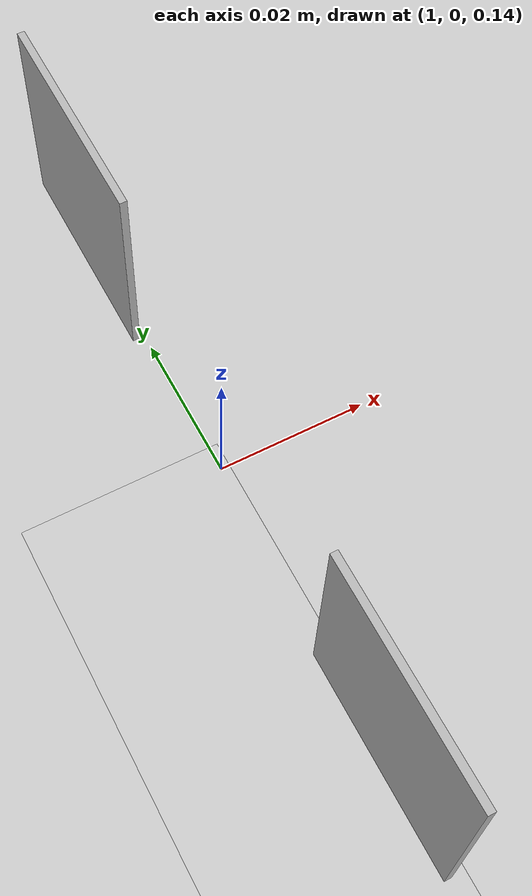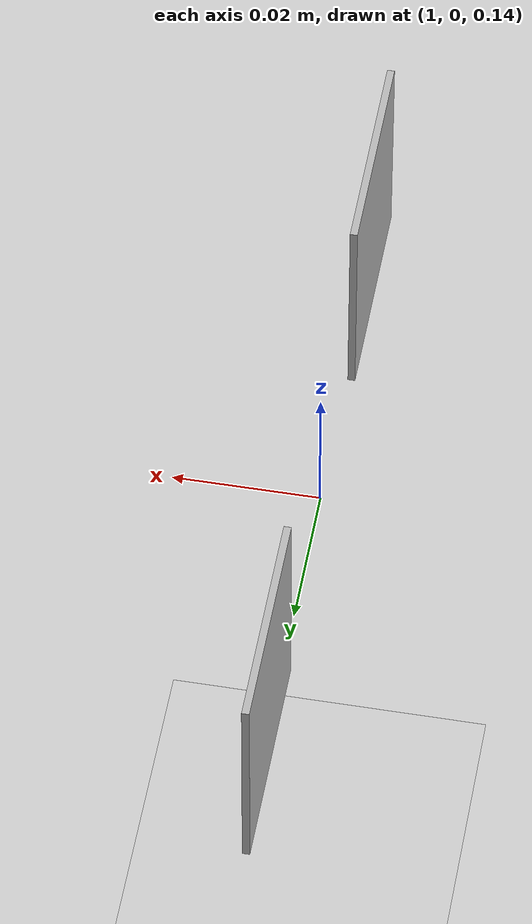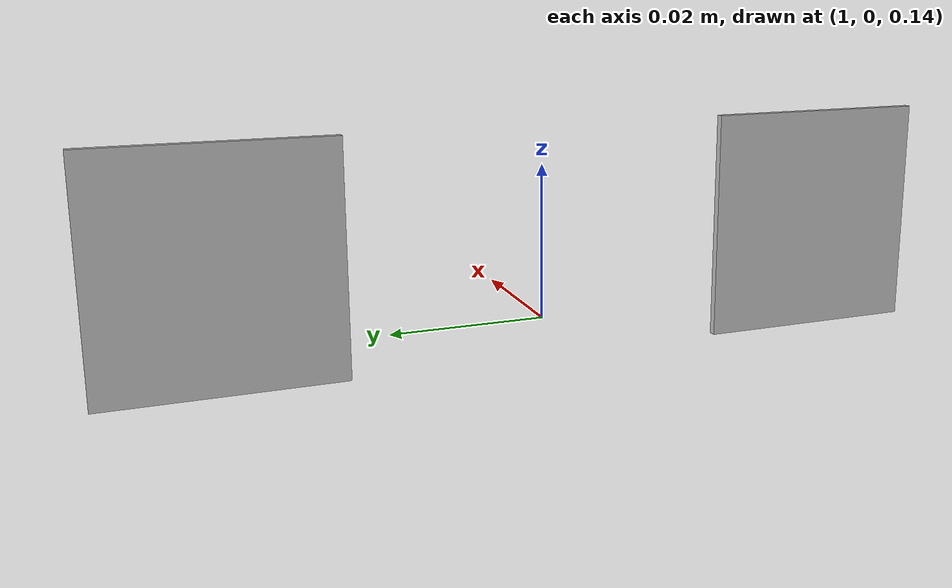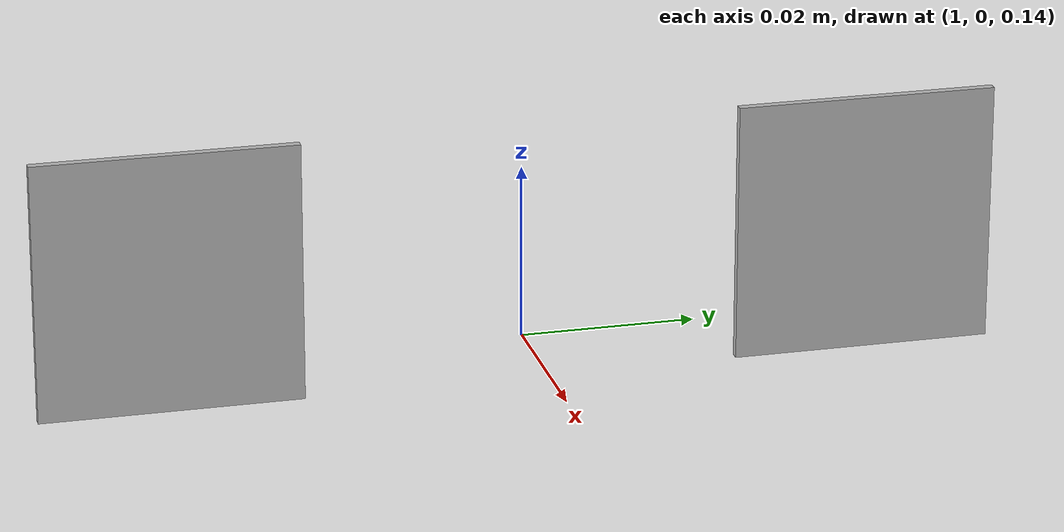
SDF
<?xml version="1.0"?>
<sdf version="1.6">
  <world name="aruco_alignment">
    <gravity>0 0 -9.8</gravity>

    <include>
      <uri>model://sun</uri>
    </include>

    <include>
      <uri>model://ground_plane</uri>
    </include>

    <include>
      <name>aruco_marker_0</name>
      <uri>model://aruco_marker_0</uri>
      <pose>1.00 0.04 0.15 0 0 0</pose>
    </include>

    <include>
      <name>aruco_marker_1</name>
      <uri>model://aruco_marker_1</uri>
      <pose>1.00 -0.04 0.15 0 0 0</pose>
    </include>
  </world>
</sdf>

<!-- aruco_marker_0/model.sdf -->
<sdf version="1.6">
  <model name="aruco_marker_0">
    <static>true</static>
    <link name="marker">
      <visual name="visual">
        <geometry>
          <box>
            <size>0.001 0.03 0.03</size>
          </box>
        </geometry>
        <material>
          <script>
            <uri>model://aruco_marker_0/materials/scripts</uri>
            <uri>model://aruco_marker_0/materials/textures</uri>
            <name>ArucoMarker/Id0</name>
          </script>
        </material>
      </visual>
      <collision name="collision">
        <geometry>
          <box>
            <size>0.001 0.03 0.03</size>
          </box>
        </geometry>
      </collision>
    </link>
  </model>
</sdf>

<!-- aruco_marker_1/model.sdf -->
<sdf version="1.6">
  <model name="aruco_marker_1">
    <static>true</static>
    <link name="marker">
      <visual name="visual">
        <geometry>
          <box>
            <size>0.001 0.03 0.03</size>
          </box>
        </geometry>
        <material>
          <script>
            <uri>model://aruco_marker_1/materials/scripts</uri>
            <uri>model://aruco_marker_1/materials/textures</uri>
            <name>ArucoMarker/Id1</name>
          </script>
        </material>
      </visual>
      <collision name="collision">
        <geometry>
          <box>
            <size>0.001 0.03 0.03</size>
          </box>
        </geometry>
      </collision>
    </link>
  </model>
</sdf>
